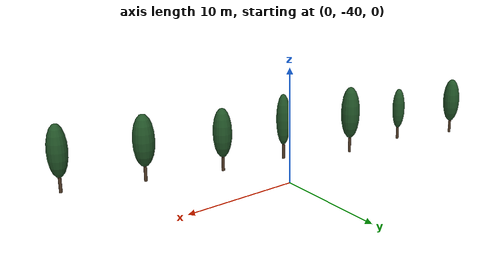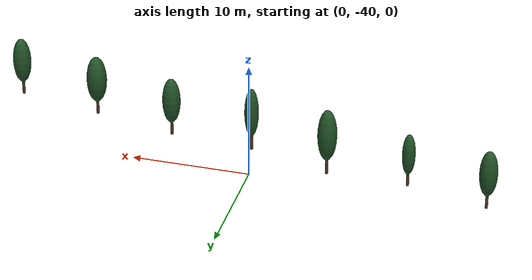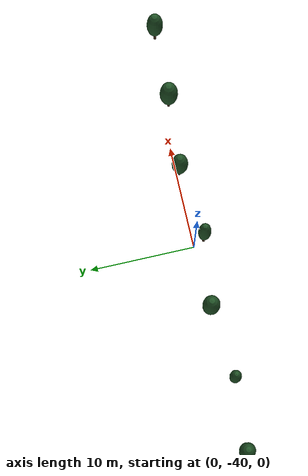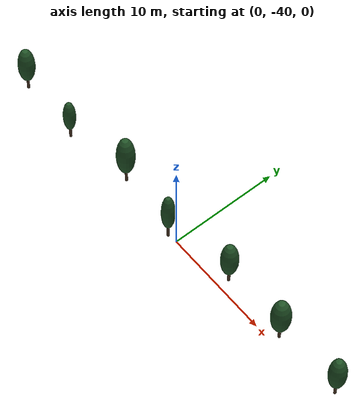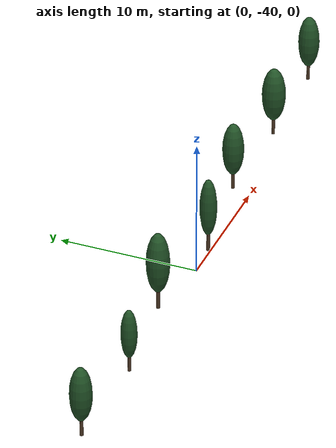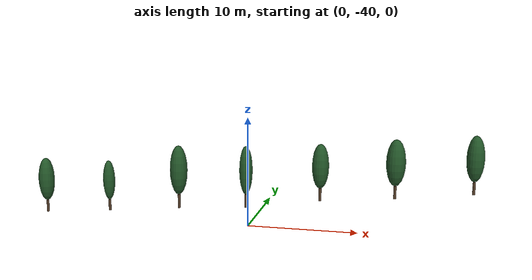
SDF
<sdf version="1.9">
 <world name="orchard_10x41">
  <model name="windbreak_S">
   <static>true</static>
   <link name="link">
    <visual name="wb_trunk_1">
     <pose>-19.750 -40.045 0.687 0.0000 0.0000 0.0000</pose>
     <geometry><cylinder><radius>0.1200</radius><length>1.1559</length></cylinder></geometry>
     <material>
      <ambient>0.280 0.200 0.130 1</ambient>
      <diffuse>0.308 0.220 0.143 1</diffuse>
      <specular>0.084 0.060 0.039 1</specular>
     </material>
     <plugin filename="gz-sim-label-system" name="gz::sim::systems::Label"><label>63</label></plugin>
    </visual>
    <visual name="wb_crown_2">
     <pose>-19.750 -40.045 3.314 0.0000 0.0000 0.0000</pose>
     <geometry><ellipsoid><radii>0.7519 0.7519 2.0492</radii></ellipsoid></geometry>
     <material>
      <ambient>0.120 0.300 0.140 1</ambient>
      <diffuse>0.132 0.330 0.154 1</diffuse>
      <specular>0.036 0.090 0.042 1</specular>
     </material>
     <plugin filename="gz-sim-label-system" name="gz::sim::systems::Label"><label>63</label></plugin>
    </visual>
    <visual name="wb_trunk_3">
     <pose>-13.167 -40.571 1.331 0.0000 0.0000 0.0000</pose>
     <geometry><cylinder><radius>0.1200</radius><length>1.0464</length></cylinder></geometry>
     <material>
      <ambient>0.280 0.200 0.130 1</ambient>
      <diffuse>0.308 0.220 0.143 1</diffuse>
      <specular>0.084 0.060 0.039 1</specular>
     </material>
     <plugin filename="gz-sim-label-system" name="gz::sim::systems::Label"><label>63</label></plugin>
    </visual>
    <visual name="wb_crown_4">
     <pose>-13.167 -40.571 3.709 0.0000 0.0000 0.0000</pose>
     <geometry><ellipsoid><radii>0.5507 0.5507 1.8550</radii></ellipsoid></geometry>
     <material>
      <ambient>0.120 0.300 0.140 1</ambient>
      <diffuse>0.132 0.330 0.154 1</diffuse>
      <specular>0.036 0.090 0.042 1</specular>
     </material>
     <plugin filename="gz-sim-label-system" name="gz::sim::systems::Label"><label>63</label></plugin>
    </visual>
    <visual name="wb_trunk_5">
     <pose>-6.583 -39.888 1.910 0.0000 0.0000 0.0000</pose>
     <geometry><cylinder><radius>0.1200</radius><length>1.2966</length></cylinder></geometry>
     <material>
      <ambient>0.280 0.200 0.130 1</ambient>
      <diffuse>0.308 0.220 0.143 1</diffuse>
      <specular>0.084 0.060 0.039 1</specular>
     </material>
     <plugin filename="gz-sim-label-system" name="gz::sim::systems::Label"><label>63</label></plugin>
    </visual>
    <visual name="wb_crown_6">
     <pose>-6.583 -39.888 4.857 0.0000 0.0000 0.0000</pose>
     <geometry><ellipsoid><radii>0.8068 0.8068 2.2986</radii></ellipsoid></geometry>
     <material>
      <ambient>0.120 0.300 0.140 1</ambient>
      <diffuse>0.132 0.330 0.154 1</diffuse>
      <specular>0.036 0.090 0.042 1</specular>
     </material>
     <plugin filename="gz-sim-label-system" name="gz::sim::systems::Label"><label>63</label></plugin>
    </visual>
    <visual name="wb_trunk_7">
     <pose>0.000 -40.840 2.579 0.0000 0.0000 0.0000</pose>
     <geometry><cylinder><radius>0.1200</radius><length>1.2407</length></cylinder></geometry>
     <material>
      <ambient>0.280 0.200 0.130 1</ambient>
      <diffuse>0.308 0.220 0.143 1</diffuse>
      <specular>0.084 0.060 0.039 1</specular>
     </material>
     <plugin filename="gz-sim-label-system" name="gz::sim::systems::Label"><label>63</label></plugin>
    </visual>
    <visual name="wb_crown_8">
     <pose>0.000 -40.840 5.399 0.0000 0.0000 0.0000</pose>
     <geometry><ellipsoid><radii>0.5943 0.5943 2.1995</radii></ellipsoid></geometry>
     <material>
      <ambient>0.120 0.300 0.140 1</ambient>
      <diffuse>0.132 0.330 0.154 1</diffuse>
      <specular>0.036 0.090 0.042 1</specular>
     </material>
     <plugin filename="gz-sim-label-system" name="gz::sim::systems::Label"><label>63</label></plugin>
    </visual>
    <visual name="wb_trunk_9">
     <pose>6.583 -40.074 3.362 0.0000 0.0000 0.0000</pose>
     <geometry><cylinder><radius>0.1200</radius><length>1.1327</length></cylinder></geometry>
     <material>
      <ambient>0.280 0.200 0.130 1</ambient>
      <diffuse>0.308 0.220 0.143 1</diffuse>
      <specular>0.084 0.060 0.039 1</specular>
     </material>
     <plugin filename="gz-sim-label-system" name="gz::sim::systems::Label"><label>63</label></plugin>
    </visual>
    <visual name="wb_crown_10">
     <pose>6.583 -40.074 5.937 0.0000 0.0000 0.0000</pose>
     <geometry><ellipsoid><radii>0.7522 0.7522 2.0079</radii></ellipsoid></geometry>
     <material>
      <ambient>0.120 0.300 0.140 1</ambient>
      <diffuse>0.132 0.330 0.154 1</diffuse>
      <specular>0.036 0.090 0.042 1</specular>
     </material>
     <plugin filename="gz-sim-label-system" name="gz::sim::systems::Label"><label>63</label></plugin>
    </visual>
    <visual name="wb_trunk_11">
     <pose>13.167 -40.562 4.066 0.0000 0.0000 0.0000</pose>
     <geometry><cylinder><radius>0.1200</radius><length>1.1547</length></cylinder></geometry>
     <material>
      <ambient>0.280 0.200 0.130 1</ambient>
      <diffuse>0.308 0.220 0.143 1</diffuse>
      <specular>0.084 0.060 0.039 1</specular>
     </material>
     <plugin filename="gz-sim-label-system" name="gz::sim::systems::Label"><label>63</label></plugin>
    </visual>
    <visual name="wb_crown_12">
     <pose>13.167 -40.562 6.691 0.0000 0.0000 0.0000</pose>
     <geometry><ellipsoid><radii>0.8398 0.8398 2.0469</radii></ellipsoid></geometry>
     <material>
      <ambient>0.120 0.300 0.140 1</ambient>
      <diffuse>0.132 0.330 0.154 1</diffuse>
      <specular>0.036 0.090 0.042 1</specular>
     </material>
     <plugin filename="gz-sim-label-system" name="gz::sim::systems::Label"><label>63</label></plugin>
    </visual>
    <visual name="wb_trunk_13">
     <pose>19.750 -40.753 4.858 0.0000 0.0000 0.0000</pose>
     <geometry><cylinder><radius>0.1200</radius><length>1.1208</length></cylinder></geometry>
     <material>
      <ambient>0.280 0.200 0.130 1</ambient>
      <diffuse>0.308 0.220 0.143 1</diffuse>
      <specular>0.084 0.060 0.039 1</specular>
     </material>
     <plugin filename="gz-sim-label-system" name="gz::sim::systems::Label"><label>63</label></plugin>
    </visual>
    <visual name="wb_crown_14">
     <pose>19.750 -40.753 7.405 0.0000 0.0000 0.0000</pose>
     <geometry><ellipsoid><radii>0.7541 0.7541 1.9869</radii></ellipsoid></geometry>
     <material>
      <ambient>0.120 0.300 0.140 1</ambient>
      <diffuse>0.132 0.330 0.154 1</diffuse>
      <specular>0.036 0.090 0.042 1</specular>
     </material>
     <plugin filename="gz-sim-label-system" name="gz::sim::systems::Label"><label>63</label></plugin>
    </visual>
    <collision name="c0">
     <pose>-19.750 -40.045 2.736 0.0000 0.0000 0.0000</pose>
     <geometry><cylinder><radius>0.1500</radius><length>5.2543</length></cylinder></geometry>
    </collision>
    <collision name="c1">
     <pose>-13.167 -40.571 3.186 0.0000 0.0000 0.0000</pose>
     <geometry><cylinder><radius>0.1500</radius><length>4.7564</length></cylinder></geometry>
    </collision>
    <collision name="c2">
     <pose>-6.583 -39.888 4.208 0.0000 0.0000 0.0000</pose>
     <geometry><cylinder><radius>0.1500</radius><length>5.8938</length></cylinder></geometry>
    </collision>
    <collision name="c3">
     <pose>0.000 -40.840 4.779 0.0000 0.0000 0.0000</pose>
     <geometry><cylinder><radius>0.1500</radius><length>5.6397</length></cylinder></geometry>
    </collision>
    <collision name="c4">
     <pose>6.583 -40.074 5.370 0.0000 0.0000 0.0000</pose>
     <geometry><cylinder><radius>0.1500</radius><length>5.1485</length></cylinder></geometry>
    </collision>
    <collision name="c5">
     <pose>13.167 -40.562 6.113 0.0000 0.0000 0.0000</pose>
     <geometry><cylinder><radius>0.1500</radius><length>5.2486</length></cylinder></geometry>
    </collision>
    <collision name="c6">
     <pose>19.750 -40.753 6.845 0.0000 0.0000 0.0000</pose>
     <geometry><cylinder><radius>0.1500</radius><length>5.0947</length></cylinder></geometry>
    </collision>
   </link>
  </model>
 </world>
</sdf>
